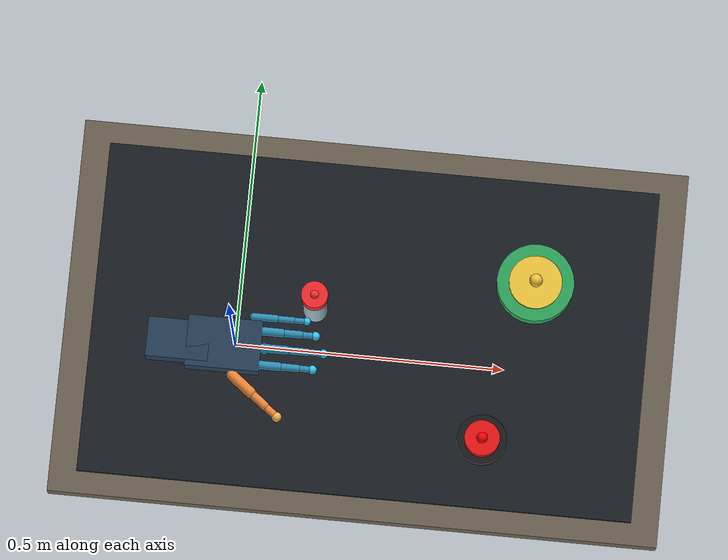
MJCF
<mujoco model="adaptive_hand_lab">
  <compiler angle="degree" inertiafromgeom="true"/>
  <option timestep="0.002" gravity="0 0 -9.81">
    <flag contact="enable"/>
  </option>

  <visual>
    <global offwidth="1280" offheight="720"/>
    <headlight ambient="0.35 0.35 0.35" diffuse="0.65 0.65 0.65" specular="0.2 0.2 0.2"/>
  </visual>

  <default>
    <joint damping="0.35" armature="0.01"/>
    <geom friction="1.2 0.08 0.02" condim="4"/>
    <position kp="80" ctrlrange="-1 1"/>
  </default>

  <asset>
    <texture name="grid" type="2d" builtin="checker" width="512" height="512" rgb1="0.82 0.84 0.86" rgb2="0.66 0.69 0.72"/>
    <material name="floor_mat" texture="grid" texrepeat="8 8" reflectance="0.08"/>
    <material name="palm_mat" rgba="0.14 0.24 0.34 1"/>
    <material name="finger_mat" rgba="0.18 0.56 0.72 1"/>
    <material name="thumb_mat" rgba="0.92 0.52 0.22 1"/>
    <material name="vial_mat" rgba="0.80 0.95 1.0 0.78"/>
    <material name="cap_mat" rgba="0.96 0.16 0.18 1"/>
    <material name="pod_mat" rgba="0.18 0.65 0.36 1"/>
    <material name="button_mat" rgba="0.92 0.08 0.08 1"/>
    <material name="target_mat" rgba="0.95 0.78 0.24 1"/>
  </asset>

  <worldbody>
    <geom name="floor" type="plane" size="2 2 0.05" material="floor_mat"/>
    <light name="key" pos="0.2 -0.8 2.0" dir="-0.1 0.6 -1" diffuse="0.9 0.9 0.9"/>
    <light name="fill" pos="-0.6 0.5 1.4" dir="0.4 -0.2 -1" diffuse="0.35 0.35 0.35"/>

    <body name="bench" pos="0.25 0 0.30">
      <geom name="bench_top" type="box" size="0.55 0.34 0.025" rgba="0.42 0.38 0.32 1"/>
      <geom name="bench_pad" type="box" pos="0 0 0.031" size="0.50 0.30 0.006" rgba="0.10 0.12 0.14 1"/>
    </body>

    <body name="sterile_pod" pos="0.54 0.11 0.365">
      <geom name="pod_bowl" type="cylinder" size="0.070 0.018" material="pod_mat"/>
      <geom name="pod_target" type="cylinder" pos="0 0 0.020" size="0.048 0.004" material="target_mat"/>
      <site name="pod_site" pos="0 0 0.045" size="0.012" rgba="0.95 0.78 0.24 1"/>
    </body>

    <body name="audit_button" pos="0.47 -0.18 0.36">
      <joint name="button_slide" type="slide" axis="0 0 -1" range="0 0.025" damping="3"/>
      <geom name="button_base" type="cylinder" size="0.045 0.010" rgba="0.10 0.10 0.10 1"/>
      <geom name="button_top" type="cylinder" pos="0 0 0.020" size="0.032 0.012" material="button_mat"/>
      <site name="button_site" pos="0 0 0.036" size="0.010" rgba="1 0 0 1"/>
    </body>

    <body name="vial" pos="0.15 0.03 0.395">
      <freejoint name="vial_free"/>
      <geom name="vial_body" type="cylinder" size="0.022 0.085" material="vial_mat" mass="0.045"/>
      <site name="vial_site" pos="0 0 0.070" size="0.010" rgba="0.8 0.95 1 1"/>
    </body>

    <body name="cap" pos="0.15 0.03 0.505">
      <freejoint name="cap_free"/>
      <geom name="cap_body" type="cylinder" size="0.024 0.018" material="cap_mat" mass="0.015"/>
      <site name="cap_site" pos="0 0 0.016" size="0.008" rgba="1 0.2 0.2 1"/>
    </body>

    <body name="hand_base" pos="-0.08 -0.08 0.56">
      <joint name="gantry_x" type="slide" axis="1 0 0" range="-0.15 0.55"/>
      <joint name="gantry_y" type="slide" axis="0 1 0" range="-0.28 0.24"/>
      <joint name="gantry_z" type="slide" axis="0 0 1" range="-0.20 0.20"/>
      <joint name="wrist_yaw" type="hinge" axis="0 0 1" range="-80 80"/>
      <geom name="gantry_carriage" type="box" size="0.055 0.035 0.025" material="palm_mat"/>
      <body name="palm" pos="0.08 0 0">
        <geom name="palm_geom" type="box" size="0.065 0.045 0.025" material="palm_mat"/>
        <site name="palm_site" pos="0.072 0 0" size="0.010" rgba="0.2 0.8 1 1"/>

        <body name="thumb" pos="0.020 -0.052 -0.003" euler="0 0 -38">
          <joint name="thumb_abd" type="hinge" axis="0 0 1" range="-35 45"/>
          <joint name="thumb_mcp" type="hinge" axis="0 1 0" range="-20 75"/>
          <geom type="capsule" fromto="0 0 0 0.045 0 0" size="0.010" material="thumb_mat"/>
          <body pos="0.045 0 0">
            <joint name="thumb_pip" type="hinge" axis="0 1 0" range="-10 80"/>
            <geom type="capsule" fromto="0 0 0 0.035 0 0" size="0.008" material="thumb_mat"/>
            <body pos="0.035 0 0">
              <joint name="thumb_dip" type="hinge" axis="0 1 0" range="-10 70"/>
              <geom name="thumb_tip_geom" type="capsule" fromto="0 0 0 0.025 0 0" size="0.007" material="thumb_mat"/>
              <site name="thumb_tip" pos="0.028 0 0" size="0.009" rgba="1 0.7 0.3 1"/>
            </body>
          </body>
        </body>

        <body name="index" pos="0.055 -0.030 0.002">
          <joint name="index_abd" type="hinge" axis="0 0 1" range="-18 18"/>
          <joint name="index_mcp" type="hinge" axis="0 1 0" range="-20 95"/>
          <geom type="capsule" fromto="0 0 0 0.046 0 0" size="0.008" material="finger_mat"/>
          <body pos="0.046 0 0">
            <joint name="index_pip" type="hinge" axis="0 1 0" range="-5 95"/>
            <geom type="capsule" fromto="0 0 0 0.033 0 0" size="0.007" material="finger_mat"/>
            <body pos="0.033 0 0">
              <joint name="index_dip" type="hinge" axis="0 1 0" range="-5 80"/>
              <geom type="capsule" fromto="0 0 0 0.024 0 0" size="0.006" material="finger_mat"/>
              <site name="index_tip" pos="0.026 0 0" size="0.008" rgba="0.2 0.8 1 1"/>
            </body>
          </body>
        </body>

        <body name="middle" pos="0.060 0 0.004">
          <joint name="middle_abd" type="hinge" axis="0 0 1" range="-14 14"/>
          <joint name="middle_mcp" type="hinge" axis="0 1 0" range="-20 95"/>
          <geom type="capsule" fromto="0 0 0 0.052 0 0" size="0.008" material="finger_mat"/>
          <body pos="0.052 0 0">
            <joint name="middle_pip" type="hinge" axis="0 1 0" range="-5 95"/>
            <geom type="capsule" fromto="0 0 0 0.037 0 0" size="0.007" material="finger_mat"/>
            <body pos="0.037 0 0">
              <joint name="middle_dip" type="hinge" axis="0 1 0" range="-5 80"/>
              <geom type="capsule" fromto="0 0 0 0.026 0 0" size="0.006" material="finger_mat"/>
              <site name="middle_tip" pos="0.028 0 0" size="0.008" rgba="0.2 0.8 1 1"/>
            </body>
          </body>
        </body>

        <body name="ring" pos="0.055 0.030 0.002">
          <joint name="ring_abd" type="hinge" axis="0 0 1" range="-18 18"/>
          <joint name="ring_mcp" type="hinge" axis="0 1 0" range="-20 95"/>
          <geom type="capsule" fromto="0 0 0 0.046 0 0" size="0.008" material="finger_mat"/>
          <body pos="0.046 0 0">
            <joint name="ring_pip" type="hinge" axis="0 1 0" range="-5 95"/>
            <geom type="capsule" fromto="0 0 0 0.033 0 0" size="0.007" material="finger_mat"/>
            <body pos="0.033 0 0">
              <joint name="ring_dip" type="hinge" axis="0 1 0" range="-5 80"/>
              <geom type="capsule" fromto="0 0 0 0.024 0 0" size="0.006" material="finger_mat"/>
              <site name="ring_tip" pos="0.026 0 0" size="0.008" rgba="0.2 0.8 1 1"/>
            </body>
          </body>
        </body>

        <body name="little" pos="0.048 0.055 -0.002">
          <joint name="little_abd" type="hinge" axis="0 0 1" range="-22 22"/>
          <joint name="little_mcp" type="hinge" axis="0 1 0" range="-20 95"/>
          <geom type="capsule" fromto="0 0 0 0.040 0 0" size="0.007" material="finger_mat"/>
          <body pos="0.040 0 0">
            <joint name="little_pip" type="hinge" axis="0 1 0" range="-5 95"/>
            <geom type="capsule" fromto="0 0 0 0.030 0 0" size="0.006" material="finger_mat"/>
            <body pos="0.030 0 0">
              <joint name="little_dip" type="hinge" axis="0 1 0" range="-5 80"/>
              <geom type="capsule" fromto="0 0 0 0.022 0 0" size="0.0055" material="finger_mat"/>
              <site name="little_tip" pos="0.024 0 0" size="0.007" rgba="0.2 0.8 1 1"/>
            </body>
          </body>
        </body>
      </body>
    </body>
  </worldbody>

  <actuator>
    <position name="gantry_x_act" joint="gantry_x" kp="180" ctrlrange="-0.15 0.55"/>
    <position name="gantry_y_act" joint="gantry_y" kp="180" ctrlrange="-0.28 0.24"/>
    <position name="gantry_z_act" joint="gantry_z" kp="180" ctrlrange="-0.20 0.20"/>
    <position name="wrist_yaw_act" joint="wrist_yaw" kp="60" ctrlrange="-1.3 1.3"/>
    <position name="button_act" joint="button_slide" kp="120" ctrlrange="0 0.025"/>

    <position name="thumb_abd_act" joint="thumb_abd" kp="55" ctrlrange="-0.6 0.8"/>
    <position name="thumb_mcp_act" joint="thumb_mcp" kp="55" ctrlrange="-0.3 1.25"/>
    <position name="thumb_pip_act" joint="thumb_pip" kp="55" ctrlrange="-0.15 1.35"/>
    <position name="thumb_dip_act" joint="thumb_dip" kp="55" ctrlrange="-0.15 1.2"/>
    <position name="index_abd_act" joint="index_abd" kp="45" ctrlrange="-0.3 0.3"/>
    <position name="index_mcp_act" joint="index_mcp" kp="50" ctrlrange="-0.3 1.5"/>
    <position name="index_pip_act" joint="index_pip" kp="50" ctrlrange="-0.1 1.5"/>
    <position name="index_dip_act" joint="index_dip" kp="50" ctrlrange="-0.1 1.3"/>
    <position name="middle_abd_act" joint="middle_abd" kp="45" ctrlrange="-0.25 0.25"/>
    <position name="middle_mcp_act" joint="middle_mcp" kp="50" ctrlrange="-0.3 1.5"/>
    <position name="middle_pip_act" joint="middle_pip" kp="50" ctrlrange="-0.1 1.5"/>
    <position name="middle_dip_act" joint="middle_dip" kp="50" ctrlrange="-0.1 1.3"/>
    <position name="ring_abd_act" joint="ring_abd" kp="45" ctrlrange="-0.3 0.3"/>
    <position name="ring_mcp_act" joint="ring_mcp" kp="50" ctrlrange="-0.3 1.5"/>
    <position name="ring_pip_act" joint="ring_pip" kp="50" ctrlrange="-0.1 1.5"/>
    <position name="ring_dip_act" joint="ring_dip" kp="50" ctrlrange="-0.1 1.3"/>
    <position name="little_abd_act" joint="little_abd" kp="45" ctrlrange="-0.35 0.35"/>
    <position name="little_mcp_act" joint="little_mcp" kp="50" ctrlrange="-0.3 1.5"/>
    <position name="little_pip_act" joint="little_pip" kp="50" ctrlrange="-0.1 1.5"/>
    <position name="little_dip_act" joint="little_dip" kp="50" ctrlrange="-0.1 1.3"/>
  </actuator>

  <sensor>
    <framepos name="palm_pos" objtype="site" objname="palm_site"/>
    <framepos name="vial_pos" objtype="site" objname="vial_site"/>
    <framepos name="cap_pos" objtype="site" objname="cap_site"/>
    <framepos name="pod_pos" objtype="site" objname="pod_site"/>
    <framepos name="button_pos" objtype="site" objname="button_site"/>
    <jointpos name="button_depth" joint="button_slide"/>
    <touch name="thumb_touch" site="thumb_tip"/>
    <touch name="index_touch" site="index_tip"/>
    <touch name="middle_touch" site="middle_tip"/>
    <touch name="ring_touch" site="ring_tip"/>
    <touch name="little_touch" site="little_tip"/>
  </sensor>
</mujoco>
